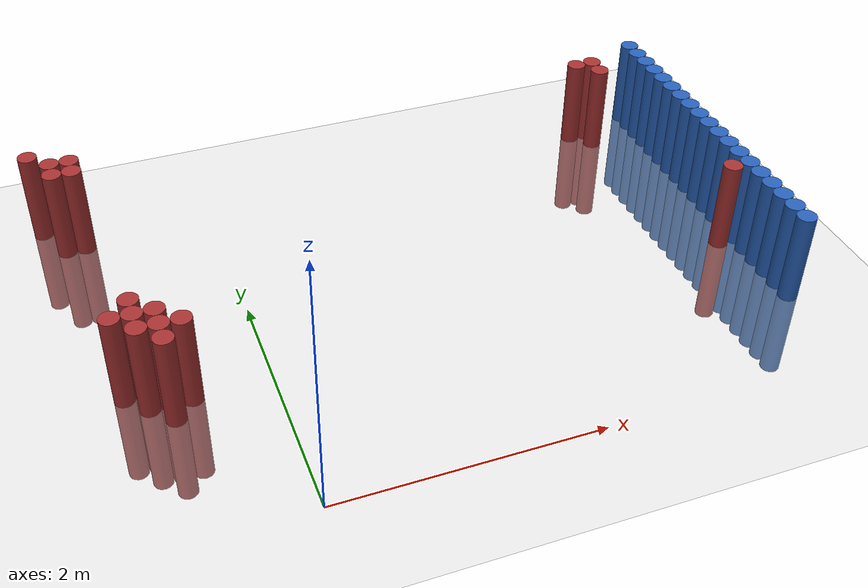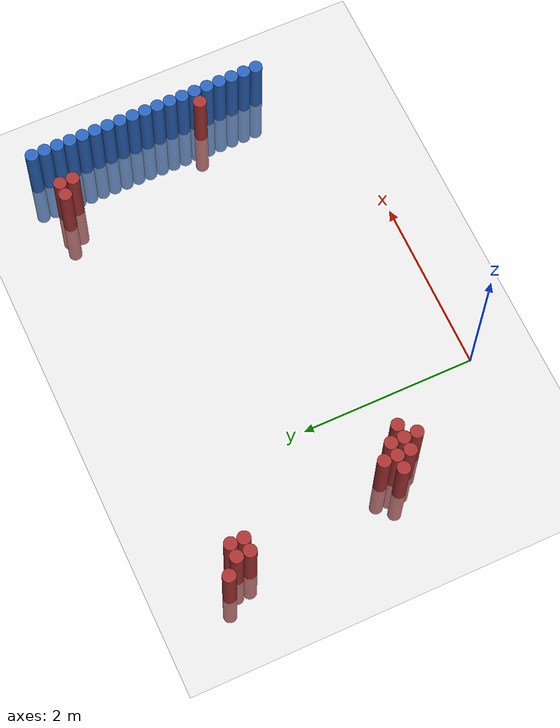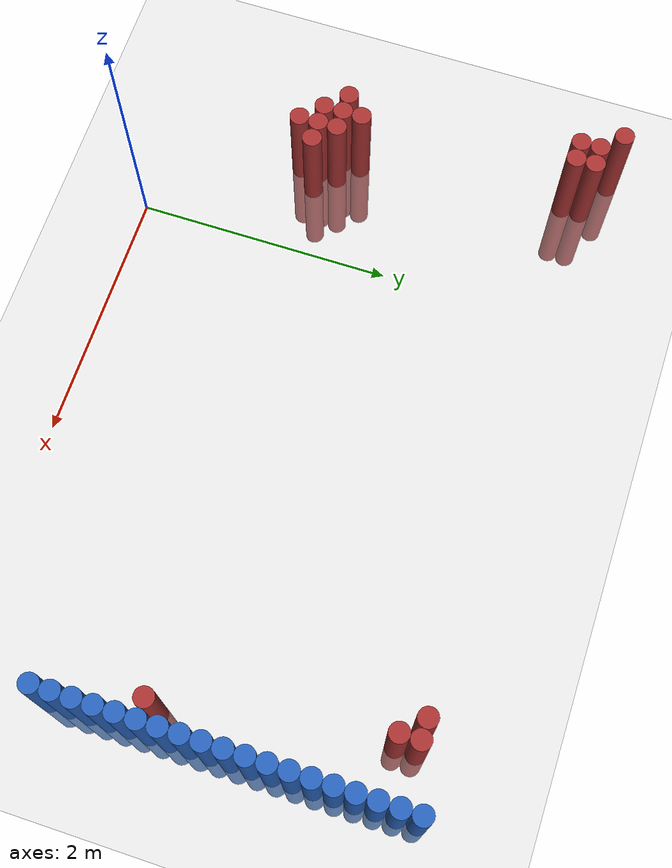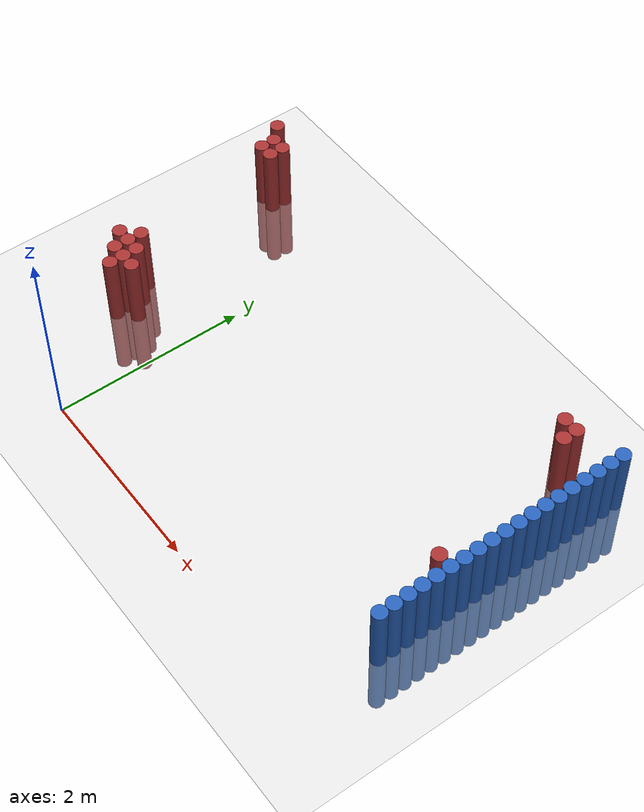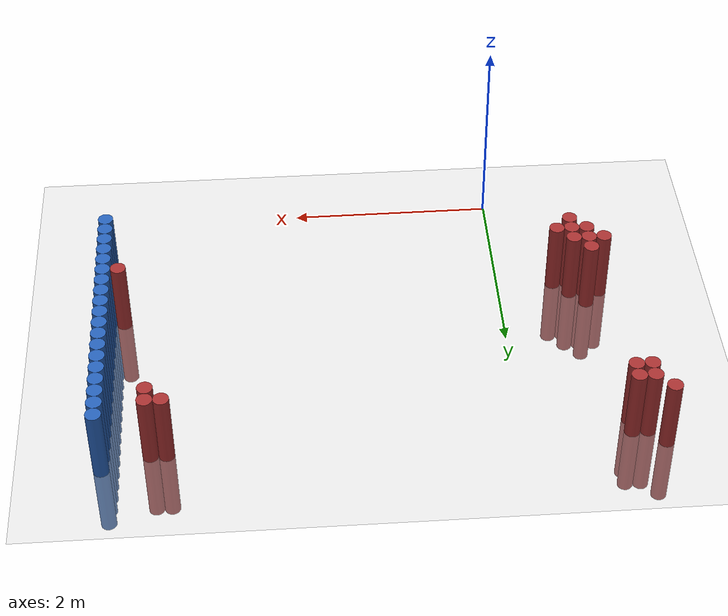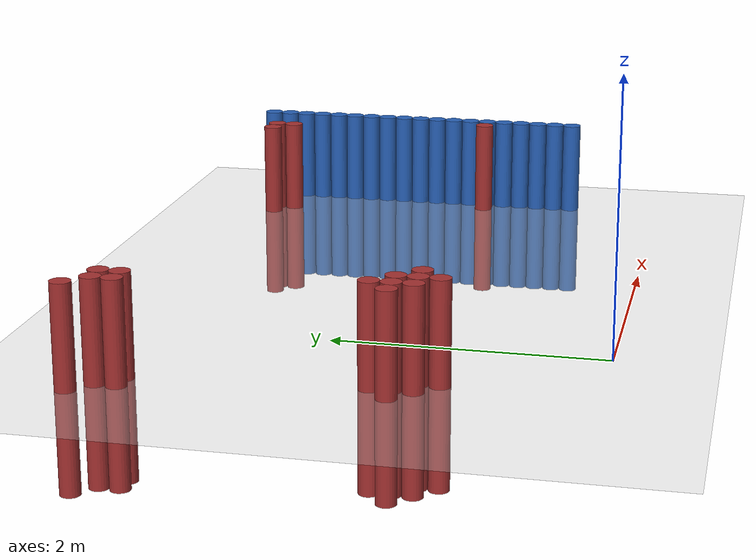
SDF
<sdf version="1.6">
 <world name="default">
  <model name="ground_plane">
   <static>1</static>
   <link name="link">
    <collision name="collision">
     <geometry><plane><normal>0 0 1</normal><size>100 100</size></plane></geometry>
     <surface><friction><ode><mu>100</mu><mu2>50</mu2></ode></friction></surface>
    </collision>
    <visual name="visual">
     <cast_shadows>0</cast_shadows>
     <geometry><plane><normal>0 0 1</normal><size>100 100</size></plane></geometry>
     <material>
      <script><uri>file://media/materials/scripts/gazebo.material</uri><name>Gazebo/Grey</name></script>
     </material>
    </visual>
   </link>
  </model>
  <model name="unit_cylinder_126">
   <static>1</static>
   <pose>3.925000 0.925000 0.000000 0.000000 0.000000 0.000000</pose>
   <link name="link">
    <inertial>
     <mass>1</mass>
     <inertia><ixx>0.145833</ixx><ixy>0</ixy><ixz>0</ixz><iyy>0.145833</iyy><iyz>0</iyz><izz>0.125</izz></inertia>
    </inertial>
    <collision name="collision">
     <geometry><cylinder><radius>0.075000</radius><length>1.5</length></cylinder></geometry>
    </collision>
    <visual name="visual">
     <geometry><cylinder><radius>0.075000</radius><length>1.5</length></cylinder></geometry>
     <material>
      <ambient>0.152000 0.379000 0.720000 1</ambient>
      <diffuse>0.152000 0.379000 0.720000 1</diffuse>
     </material>
     <material>
      <script><name>Gazebo/Grey</name><uri>file://media/materials/scripts/gazebo.material</uri></script>
     </material>
    </visual>
   </link>
  </model>
  <model name="unit_cylinder_128">
   <static>1</static>
   <pose>3.925000 1.075000 0.000000 0.000000 0.000000 0.000000</pose>
   <link name="link">
    <inertial>
     <mass>1</mass>
     <inertia><ixx>0.145833</ixx><ixy>0</ixy><ixz>0</ixz><iyy>0.145833</iyy><iyz>0</iyz><izz>0.125</izz></inertia>
    </inertial>
    <collision name="collision">
     <geometry><cylinder><radius>0.075000</radius><length>1.5</length></cylinder></geometry>
    </collision>
    <visual name="visual">
     <geometry><cylinder><radius>0.075000</radius><length>1.5</length></cylinder></geometry>
     <material>
      <ambient>0.152000 0.379000 0.720000 1</ambient>
      <diffuse>0.152000 0.379000 0.720000 1</diffuse>
     </material>
     <material>
      <script><name>Gazebo/Grey</name><uri>file://media/materials/scripts/gazebo.material</uri></script>
     </material>
    </visual>
   </link>
  </model>
  <model name="unit_cylinder_130">
   <static>1</static>
   <pose>3.925000 1.225000 0.000000 0.000000 0.000000 0.000000</pose>
   <link name="link">
    <inertial>
     <mass>1</mass>
     <inertia><ixx>0.145833</ixx><ixy>0</ixy><ixz>0</ixz><iyy>0.145833</iyy><iyz>0</iyz><izz>0.125</izz></inertia>
    </inertial>
    <collision name="collision">
     <geometry><cylinder><radius>0.075000</radius><length>1.5</length></cylinder></geometry>
    </collision>
    <visual name="visual">
     <geometry><cylinder><radius>0.075000</radius><length>1.5</length></cylinder></geometry>
     <material>
      <ambient>0.152000 0.379000 0.720000 1</ambient>
      <diffuse>0.152000 0.379000 0.720000 1</diffuse>
     </material>
     <material>
      <script><name>Gazebo/Grey</name><uri>file://media/materials/scripts/gazebo.material</uri></script>
     </material>
    </visual>
   </link>
  </model>
  <model name="unit_cylinder_132">
   <static>1</static>
   <pose>3.925000 1.375000 0.000000 0.000000 0.000000 0.000000</pose>
   <link name="link">
    <inertial>
     <mass>1</mass>
     <inertia><ixx>0.145833</ixx><ixy>0</ixy><ixz>0</ixz><iyy>0.145833</iyy><iyz>0</iyz><izz>0.125</izz></inertia>
    </inertial>
    <collision name="collision">
     <geometry><cylinder><radius>0.075000</radius><length>1.5</length></cylinder></geometry>
    </collision>
    <visual name="visual">
     <geometry><cylinder><radius>0.075000</radius><length>1.5</length></cylinder></geometry>
     <material>
      <ambient>0.152000 0.379000 0.720000 1</ambient>
      <diffuse>0.152000 0.379000 0.720000 1</diffuse>
     </material>
     <material>
      <script><name>Gazebo/Grey</name><uri>file://media/materials/scripts/gazebo.material</uri></script>
     </material>
    </visual>
   </link>
  </model>
  <model name="unit_cylinder_134">
   <static>1</static>
   <pose>3.925000 1.525000 0.000000 0.000000 0.000000 0.000000</pose>
   <link name="link">
    <inertial>
     <mass>1</mass>
     <inertia><ixx>0.145833</ixx><ixy>0</ixy><ixz>0</ixz><iyy>0.145833</iyy><iyz>0</iyz><izz>0.125</izz></inertia>
    </inertial>
    <collision name="collision">
     <geometry><cylinder><radius>0.075000</radius><length>1.5</length></cylinder></geometry>
    </collision>
    <visual name="visual">
     <geometry><cylinder><radius>0.075000</radius><length>1.5</length></cylinder></geometry>
     <material>
      <ambient>0.152000 0.379000 0.720000 1</ambient>
      <diffuse>0.152000 0.379000 0.720000 1</diffuse>
     </material>
     <material>
      <script><name>Gazebo/Grey</name><uri>file://media/materials/scripts/gazebo.material</uri></script>
     </material>
    </visual>
   </link>
  </model>
  <model name="unit_cylinder_136">
   <static>1</static>
   <pose>3.925000 1.675000 0.000000 0.000000 0.000000 0.000000</pose>
   <link name="link">
    <inertial>
     <mass>1</mass>
     <inertia><ixx>0.145833</ixx><ixy>0</ixy><ixz>0</ixz><iyy>0.145833</iyy><iyz>0</iyz><izz>0.125</izz></inertia>
    </inertial>
    <collision name="collision">
     <geometry><cylinder><radius>0.075000</radius><length>1.5</length></cylinder></geometry>
    </collision>
    <visual name="visual">
     <geometry><cylinder><radius>0.075000</radius><length>1.5</length></cylinder></geometry>
     <material>
      <ambient>0.152000 0.379000 0.720000 1</ambient>
      <diffuse>0.152000 0.379000 0.720000 1</diffuse>
     </material>
     <material>
      <script><name>Gazebo/Grey</name><uri>file://media/materials/scripts/gazebo.material</uri></script>
     </material>
    </visual>
   </link>
  </model>
  <model name="unit_cylinder_138">
   <static>1</static>
   <pose>3.925000 1.825000 0.000000 0.000000 0.000000 0.000000</pose>
   <link name="link">
    <inertial>
     <mass>1</mass>
     <inertia><ixx>0.145833</ixx><ixy>0</ixy><ixz>0</ixz><iyy>0.145833</iyy><iyz>0</iyz><izz>0.125</izz></inertia>
    </inertial>
    <collision name="collision">
     <geometry><cylinder><radius>0.075000</radius><length>1.5</length></cylinder></geometry>
    </collision>
    <visual name="visual">
     <geometry><cylinder><radius>0.075000</radius><length>1.5</length></cylinder></geometry>
     <material>
      <ambient>0.152000 0.379000 0.720000 1</ambient>
      <diffuse>0.152000 0.379000 0.720000 1</diffuse>
     </material>
     <material>
      <script><name>Gazebo/Grey</name><uri>file://media/materials/scripts/gazebo.material</uri></script>
     </material>
    </visual>
   </link>
  </model>
  <model name="unit_cylinder_140">
   <static>1</static>
   <pose>3.925000 1.975000 0.000000 0.000000 0.000000 0.000000</pose>
   <link name="link">
    <inertial>
     <mass>1</mass>
     <inertia><ixx>0.145833</ixx><ixy>0</ixy><ixz>0</ixz><iyy>0.145833</iyy><iyz>0</iyz><izz>0.125</izz></inertia>
    </inertial>
    <collision name="collision">
     <geometry><cylinder><radius>0.075000</radius><length>1.5</length></cylinder></geometry>
    </collision>
    <visual name="visual">
     <geometry><cylinder><radius>0.075000</radius><length>1.5</length></cylinder></geometry>
     <material>
      <ambient>0.152000 0.379000 0.720000 1</ambient>
      <diffuse>0.152000 0.379000 0.720000 1</diffuse>
     </material>
     <material>
      <script><name>Gazebo/Grey</name><uri>file://media/materials/scripts/gazebo.material</uri></script>
     </material>
    </visual>
   </link>
  </model>
  <model name="unit_cylinder_142">
   <static>1</static>
   <pose>3.925000 2.125000 0.000000 0.000000 0.000000 0.000000</pose>
   <link name="link">
    <inertial>
     <mass>1</mass>
     <inertia><ixx>0.145833</ixx><ixy>0</ixy><ixz>0</ixz><iyy>0.145833</iyy><iyz>0</iyz><izz>0.125</izz></inertia>
    </inertial>
    <collision name="collision">
     <geometry><cylinder><radius>0.075000</radius><length>1.5</length></cylinder></geometry>
    </collision>
    <visual name="visual">
     <geometry><cylinder><radius>0.075000</radius><length>1.5</length></cylinder></geometry>
     <material>
      <ambient>0.152000 0.379000 0.720000 1</ambient>
      <diffuse>0.152000 0.379000 0.720000 1</diffuse>
     </material>
     <material>
      <script><name>Gazebo/Grey</name><uri>file://media/materials/scripts/gazebo.material</uri></script>
     </material>
    </visual>
   </link>
  </model>
  <model name="unit_cylinder_144">
   <static>1</static>
   <pose>3.925000 2.275000 0.000000 0.000000 0.000000 0.000000</pose>
   <link name="link">
    <inertial>
     <mass>1</mass>
     <inertia><ixx>0.145833</ixx><ixy>0</ixy><ixz>0</ixz><iyy>0.145833</iyy><iyz>0</iyz><izz>0.125</izz></inertia>
    </inertial>
    <collision name="collision">
     <geometry><cylinder><radius>0.075000</radius><length>1.5</length></cylinder></geometry>
    </collision>
    <visual name="visual">
     <geometry><cylinder><radius>0.075000</radius><length>1.5</length></cylinder></geometry>
     <material>
      <ambient>0.152000 0.379000 0.720000 1</ambient>
      <diffuse>0.152000 0.379000 0.720000 1</diffuse>
     </material>
     <material>
      <script><name>Gazebo/Grey</name><uri>file://media/materials/scripts/gazebo.material</uri></script>
     </material>
    </visual>
   </link>
  </model>
  <model name="unit_cylinder_146">
   <static>1</static>
   <pose>3.925000 2.425000 0.000000 0.000000 0.000000 0.000000</pose>
   <link name="link">
    <inertial>
     <mass>1</mass>
     <inertia><ixx>0.145833</ixx><ixy>0</ixy><ixz>0</ixz><iyy>0.145833</iyy><iyz>0</iyz><izz>0.125</izz></inertia>
    </inertial>
    <collision name="collision">
     <geometry><cylinder><radius>0.075000</radius><length>1.5</length></cylinder></geometry>
    </collision>
    <visual name="visual">
     <geometry><cylinder><radius>0.075000</radius><length>1.5</length></cylinder></geometry>
     <material>
      <ambient>0.152000 0.379000 0.720000 1</ambient>
      <diffuse>0.152000 0.379000 0.720000 1</diffuse>
     </material>
     <material>
      <script><name>Gazebo/Grey</name><uri>file://media/materials/scripts/gazebo.material</uri></script>
     </material>
    </visual>
   </link>
  </model>
  <model name="unit_cylinder_148">
   <static>1</static>
   <pose>3.925000 2.575000 0.000000 0.000000 0.000000 0.000000</pose>
   <link name="link">
    <inertial>
     <mass>1</mass>
     <inertia><ixx>0.145833</ixx><ixy>0</ixy><ixz>0</ixz><iyy>0.145833</iyy><iyz>0</iyz><izz>0.125</izz></inertia>
    </inertial>
    <collision name="collision">
     <geometry><cylinder><radius>0.075000</radius><length>1.5</length></cylinder></geometry>
    </collision>
    <visual name="visual">
     <geometry><cylinder><radius>0.075000</radius><length>1.5</length></cylinder></geometry>
     <material>
      <ambient>0.152000 0.379000 0.720000 1</ambient>
      <diffuse>0.152000 0.379000 0.720000 1</diffuse>
     </material>
     <material>
      <script><name>Gazebo/Grey</name><uri>file://media/materials/scripts/gazebo.material</uri></script>
     </material>
    </visual>
   </link>
  </model>
  <model name="unit_cylinder_150">
   <static>1</static>
   <pose>3.925000 2.725000 0.000000 0.000000 0.000000 0.000000</pose>
   <link name="link">
    <inertial>
     <mass>1</mass>
     <inertia><ixx>0.145833</ixx><ixy>0</ixy><ixz>0</ixz><iyy>0.145833</iyy><iyz>0</iyz><izz>0.125</izz></inertia>
    </inertial>
    <collision name="collision">
     <geometry><cylinder><radius>0.075000</radius><length>1.5</length></cylinder></geometry>
    </collision>
    <visual name="visual">
     <geometry><cylinder><radius>0.075000</radius><length>1.5</length></cylinder></geometry>
     <material>
      <ambient>0.152000 0.379000 0.720000 1</ambient>
      <diffuse>0.152000 0.379000 0.720000 1</diffuse>
     </material>
     <material>
      <script><name>Gazebo/Grey</name><uri>file://media/materials/scripts/gazebo.material</uri></script>
     </material>
    </visual>
   </link>
  </model>
  <model name="unit_cylinder_152">
   <static>1</static>
   <pose>3.925000 2.875000 0.000000 0.000000 0.000000 0.000000</pose>
   <link name="link">
    <inertial>
     <mass>1</mass>
     <inertia><ixx>0.145833</ixx><ixy>0</ixy><ixz>0</ixz><iyy>0.145833</iyy><iyz>0</iyz><izz>0.125</izz></inertia>
    </inertial>
    <collision name="collision">
     <geometry><cylinder><radius>0.075000</radius><length>1.5</length></cylinder></geometry>
    </collision>
    <visual name="visual">
     <geometry><cylinder><radius>0.075000</radius><length>1.5</length></cylinder></geometry>
     <material>
      <ambient>0.152000 0.379000 0.720000 1</ambient>
      <diffuse>0.152000 0.379000 0.720000 1</diffuse>
     </material>
     <material>
      <script><name>Gazebo/Grey</name><uri>file://media/materials/scripts/gazebo.material</uri></script>
     </material>
    </visual>
   </link>
  </model>
  <model name="unit_cylinder_154">
   <static>1</static>
   <pose>3.925000 3.025000 0.000000 0.000000 0.000000 0.000000</pose>
   <link name="link">
    <inertial>
     <mass>1</mass>
     <inertia><ixx>0.145833</ixx><ixy>0</ixy><ixz>0</ixz><iyy>0.145833</iyy><iyz>0</iyz><izz>0.125</izz></inertia>
    </inertial>
    <collision name="collision">
     <geometry><cylinder><radius>0.075000</radius><length>1.5</length></cylinder></geometry>
    </collision>
    <visual name="visual">
     <geometry><cylinder><radius>0.075000</radius><length>1.5</length></cylinder></geometry>
     <material>
      <ambient>0.152000 0.379000 0.720000 1</ambient>
      <diffuse>0.152000 0.379000 0.720000 1</diffuse>
     </material>
     <material>
      <script><name>Gazebo/Grey</name><uri>file://media/materials/scripts/gazebo.material</uri></script>
     </material>
    </visual>
   </link>
  </model>
  <model name="unit_cylinder_156">
   <static>1</static>
   <pose>3.925000 3.175000 0.000000 0.000000 0.000000 0.000000</pose>
   <link name="link">
    <inertial>
     <mass>1</mass>
     <inertia><ixx>0.145833</ixx><ixy>0</ixy><ixz>0</ixz><iyy>0.145833</iyy><iyz>0</iyz><izz>0.125</izz></inertia>
    </inertial>
    <collision name="collision">
     <geometry><cylinder><radius>0.075000</radius><length>1.5</length></cylinder></geometry>
    </collision>
    <visual name="visual">
     <geometry><cylinder><radius>0.075000</radius><length>1.5</length></cylinder></geometry>
     <material>
      <ambient>0.152000 0.379000 0.720000 1</ambient>
      <diffuse>0.152000 0.379000 0.720000 1</diffuse>
     </material>
     <material>
      <script><name>Gazebo/Grey</name><uri>file://media/materials/scripts/gazebo.material</uri></script>
     </material>
    </visual>
   </link>
  </model>
  <model name="unit_cylinder_158">
   <static>1</static>
   <pose>3.925000 3.325000 0.000000 0.000000 0.000000 0.000000</pose>
   <link name="link">
    <inertial>
     <mass>1</mass>
     <inertia><ixx>0.145833</ixx><ixy>0</ixy><ixz>0</ixz><iyy>0.145833</iyy><iyz>0</iyz><izz>0.125</izz></inertia>
    </inertial>
    <collision name="collision">
     <geometry><cylinder><radius>0.075000</radius><length>1.5</length></cylinder></geometry>
    </collision>
    <visual name="visual">
     <geometry><cylinder><radius>0.075000</radius><length>1.5</length></cylinder></geometry>
     <material>
      <ambient>0.152000 0.379000 0.720000 1</ambient>
      <diffuse>0.152000 0.379000 0.720000 1</diffuse>
     </material>
     <material>
      <script><name>Gazebo/Grey</name><uri>file://media/materials/scripts/gazebo.material</uri></script>
     </material>
    </visual>
   </link>
  </model>
  <model name="unit_cylinder_160">
   <static>1</static>
   <pose>3.925000 3.475000 0.000000 0.000000 0.000000 0.000000</pose>
   <link name="link">
    <inertial>
     <mass>1</mass>
     <inertia><ixx>0.145833</ixx><ixy>0</ixy><ixz>0</ixz><iyy>0.145833</iyy><iyz>0</iyz><izz>0.125</izz></inertia>
    </inertial>
    <collision name="collision">
     <geometry><cylinder><radius>0.075000</radius><length>1.5</length></cylinder></geometry>
    </collision>
    <visual name="visual">
     <geometry><cylinder><radius>0.075000</radius><length>1.5</length></cylinder></geometry>
     <material>
      <ambient>0.152000 0.379000 0.720000 1</ambient>
      <diffuse>0.152000 0.379000 0.720000 1</diffuse>
     </material>
     <material>
      <script><name>Gazebo/Grey</name><uri>file://media/materials/scripts/gazebo.material</uri></script>
     </material>
    </visual>
   </link>
  </model>
  <model name="unit_cylinder_308">
   <static>1</static>
   <pose>-1.325000 3.475000 0.000000 0.000000 0.000000 0.000000</pose>
   <link name="link">
    <inertial>
     <mass>1</mass>
     <inertia><ixx>0.145833</ixx><ixy>0</ixy><ixz>0</ixz><iyy>0.145833</iyy><iyz>0</iyz><izz>0.125</izz></inertia>
    </inertial>
    <collision name="collision">
     <geometry><cylinder><radius>0.075000</radius><length>1.5</length></cylinder></geometry>
    </collision>
    <visual name="visual">
     <geometry><cylinder><radius>0.075000</radius><length>1.5</length></cylinder></geometry>
     <material>
      <ambient>0.648000 0.192000 0.192000 1</ambient>
      <diffuse>0.648000 0.192000 0.192000 1</diffuse>
     </material>
     <material>
      <script><name>Gazebo/Grey</name><uri>file://media/materials/scripts/gazebo.material</uri></script>
     </material>
    </visual>
   </link>
  </model>
  <model name="unit_cylinder_309">
   <static>1</static>
   <pose>-1.175000 3.175000 0.000000 0.000000 0.000000 0.000000</pose>
   <link name="link">
    <inertial>
     <mass>1</mass>
     <inertia><ixx>0.145833</ixx><ixy>0</ixy><ixz>0</ixz><iyy>0.145833</iyy><iyz>0</iyz><izz>0.125</izz></inertia>
    </inertial>
    <collision name="collision">
     <geometry><cylinder><radius>0.075000</radius><length>1.5</length></cylinder></geometry>
    </collision>
    <visual name="visual">
     <geometry><cylinder><radius>0.075000</radius><length>1.5</length></cylinder></geometry>
     <material>
      <ambient>0.648000 0.192000 0.192000 1</ambient>
      <diffuse>0.648000 0.192000 0.192000 1</diffuse>
     </material>
     <material>
      <script><name>Gazebo/Grey</name><uri>file://media/materials/scripts/gazebo.material</uri></script>
     </material>
    </visual>
   </link>
  </model>
  <model name="unit_cylinder_310">
   <static>1</static>
   <pose>-1.175000 3.325000 0.000000 0.000000 0.000000 0.000000</pose>
   <link name="link">
    <inertial>
     <mass>1</mass>
     <inertia><ixx>0.145833</ixx><ixy>0</ixy><ixz>0</ixz><iyy>0.145833</iyy><iyz>0</iyz><izz>0.125</izz></inertia>
    </inertial>
    <collision name="collision">
     <geometry><cylinder><radius>0.075000</radius><length>1.5</length></cylinder></geometry>
    </collision>
    <visual name="visual">
     <geometry><cylinder><radius>0.075000</radius><length>1.5</length></cylinder></geometry>
     <material>
      <ambient>0.648000 0.192000 0.192000 1</ambient>
      <diffuse>0.648000 0.192000 0.192000 1</diffuse>
     </material>
     <material>
      <script><name>Gazebo/Grey</name><uri>file://media/materials/scripts/gazebo.material</uri></script>
     </material>
    </visual>
   </link>
  </model>
  <model name="unit_cylinder_311">
   <static>1</static>
   <pose>-1.025000 1.375000 0.000000 0.000000 0.000000 0.000000</pose>
   <link name="link">
    <inertial>
     <mass>1</mass>
     <inertia><ixx>0.145833</ixx><ixy>0</ixy><ixz>0</ixz><iyy>0.145833</iyy><iyz>0</iyz><izz>0.125</izz></inertia>
    </inertial>
    <collision name="collision">
     <geometry><cylinder><radius>0.075000</radius><length>1.5</length></cylinder></geometry>
    </collision>
    <visual name="visual">
     <geometry><cylinder><radius>0.075000</radius><length>1.5</length></cylinder></geometry>
     <material>
      <ambient>0.648000 0.192000 0.192000 1</ambient>
      <diffuse>0.648000 0.192000 0.192000 1</diffuse>
     </material>
     <material>
      <script><name>Gazebo/Grey</name><uri>file://media/materials/scripts/gazebo.material</uri></script>
     </material>
    </visual>
   </link>
  </model>
  <model name="unit_cylinder_312">
   <static>1</static>
   <pose>-1.025000 3.175000 0.000000 0.000000 0.000000 0.000000</pose>
   <link name="link">
    <inertial>
     <mass>1</mass>
     <inertia><ixx>0.145833</ixx><ixy>0</ixy><ixz>0</ixz><iyy>0.145833</iyy><iyz>0</iyz><izz>0.125</izz></inertia>
    </inertial>
    <collision name="collision">
     <geometry><cylinder><radius>0.075000</radius><length>1.5</length></cylinder></geometry>
    </collision>
    <visual name="visual">
     <geometry><cylinder><radius>0.075000</radius><length>1.5</length></cylinder></geometry>
     <material>
      <ambient>0.648000 0.192000 0.192000 1</ambient>
      <diffuse>0.648000 0.192000 0.192000 1</diffuse>
     </material>
     <material>
      <script><name>Gazebo/Grey</name><uri>file://media/materials/scripts/gazebo.material</uri></script>
     </material>
    </visual>
   </link>
  </model>
  <model name="unit_cylinder_313">
   <static>1</static>
   <pose>-1.025000 3.325000 0.000000 0.000000 0.000000 0.000000</pose>
   <link name="link">
    <inertial>
     <mass>1</mass>
     <inertia><ixx>0.145833</ixx><ixy>0</ixy><ixz>0</ixz><iyy>0.145833</iyy><iyz>0</iyz><izz>0.125</izz></inertia>
    </inertial>
    <collision name="collision">
     <geometry><cylinder><radius>0.075000</radius><length>1.5</length></cylinder></geometry>
    </collision>
    <visual name="visual">
     <geometry><cylinder><radius>0.075000</radius><length>1.5</length></cylinder></geometry>
     <material>
      <ambient>0.648000 0.192000 0.192000 1</ambient>
      <diffuse>0.648000 0.192000 0.192000 1</diffuse>
     </material>
     <material>
      <script><name>Gazebo/Grey</name><uri>file://media/materials/scripts/gazebo.material</uri></script>
     </material>
    </visual>
   </link>
  </model>
  <model name="unit_cylinder_314">
   <static>1</static>
   <pose>-0.875000 1.225000 0.000000 0.000000 0.000000 0.000000</pose>
   <link name="link">
    <inertial>
     <mass>1</mass>
     <inertia><ixx>0.145833</ixx><ixy>0</ixy><ixz>0</ixz><iyy>0.145833</iyy><iyz>0</iyz><izz>0.125</izz></inertia>
    </inertial>
    <collision name="collision">
     <geometry><cylinder><radius>0.075000</radius><length>1.5</length></cylinder></geometry>
    </collision>
    <visual name="visual">
     <geometry><cylinder><radius>0.075000</radius><length>1.5</length></cylinder></geometry>
     <material>
      <ambient>0.648000 0.192000 0.192000 1</ambient>
      <diffuse>0.648000 0.192000 0.192000 1</diffuse>
     </material>
     <material>
      <script><name>Gazebo/Grey</name><uri>file://media/materials/scripts/gazebo.material</uri></script>
     </material>
    </visual>
   </link>
  </model>
  <model name="unit_cylinder_315">
   <static>1</static>
   <pose>-0.875000 1.375000 0.000000 0.000000 0.000000 0.000000</pose>
   <link name="link">
    <inertial>
     <mass>1</mass>
     <inertia><ixx>0.145833</ixx><ixy>0</ixy><ixz>0</ixz><iyy>0.145833</iyy><iyz>0</iyz><izz>0.125</izz></inertia>
    </inertial>
    <collision name="collision">
     <geometry><cylinder><radius>0.075000</radius><length>1.5</length></cylinder></geometry>
    </collision>
    <visual name="visual">
     <geometry><cylinder><radius>0.075000</radius><length>1.5</length></cylinder></geometry>
     <material>
      <ambient>0.648000 0.192000 0.192000 1</ambient>
      <diffuse>0.648000 0.192000 0.192000 1</diffuse>
     </material>
     <material>
      <script><name>Gazebo/Grey</name><uri>file://media/materials/scripts/gazebo.material</uri></script>
     </material>
    </visual>
   </link>
  </model>
  <model name="unit_cylinder_316">
   <static>1</static>
   <pose>-0.875000 1.525000 0.000000 0.000000 0.000000 0.000000</pose>
   <link name="link">
    <inertial>
     <mass>1</mass>
     <inertia><ixx>0.145833</ixx><ixy>0</ixy><ixz>0</ixz><iyy>0.145833</iyy><iyz>0</iyz><izz>0.125</izz></inertia>
    </inertial>
    <collision name="collision">
     <geometry><cylinder><radius>0.075000</radius><length>1.5</length></cylinder></geometry>
    </collision>
    <visual name="visual">
     <geometry><cylinder><radius>0.075000</radius><length>1.5</length></cylinder></geometry>
     <material>
      <ambient>0.648000 0.192000 0.192000 1</ambient>
      <diffuse>0.648000 0.192000 0.192000 1</diffuse>
     </material>
     <material>
      <script><name>Gazebo/Grey</name><uri>file://media/materials/scripts/gazebo.material</uri></script>
     </material>
    </visual>
   </link>
  </model>
  <model name="unit_cylinder_317">
   <static>1</static>
   <pose>-0.725000 1.075000 0.000000 0.000000 0.000000 0.000000</pose>
   <link name="link">
    <inertial>
     <mass>1</mass>
     <inertia><ixx>0.145833</ixx><ixy>0</ixy><ixz>0</ixz><iyy>0.145833</iyy><iyz>0</iyz><izz>0.125</izz></inertia>
    </inertial>
    <collision name="collision">
     <geometry><cylinder><radius>0.075000</radius><length>1.5</length></cylinder></geometry>
    </collision>
    <visual name="visual">
     <geometry><cylinder><radius>0.075000</radius><length>1.5</length></cylinder></geometry>
     <material>
      <ambient>0.648000 0.192000 0.192000 1</ambient>
      <diffuse>0.648000 0.192000 0.192000 1</diffuse>
     </material>
     <material>
      <script><name>Gazebo/Grey</name><uri>file://media/materials/scripts/gazebo.material</uri></script>
     </material>
    </visual>
   </link>
  </model>
  <model name="unit_cylinder_318">
   <static>1</static>
   <pose>-0.725000 1.225000 0.000000 0.000000 0.000000 0.000000</pose>
   <link name="link">
    <inertial>
     <mass>1</mass>
     <inertia><ixx>0.145833</ixx><ixy>0</ixy><ixz>0</ixz><iyy>0.145833</iyy><iyz>0</iyz><izz>0.125</izz></inertia>
    </inertial>
    <collision name="collision">
     <geometry><cylinder><radius>0.075000</radius><length>1.5</length></cylinder></geometry>
    </collision>
    <visual name="visual">
     <geometry><cylinder><radius>0.075000</radius><length>1.5</length></cylinder></geometry>
     <material>
      <ambient>0.648000 0.192000 0.192000 1</ambient>
      <diffuse>0.648000 0.192000 0.192000 1</diffuse>
     </material>
     <material>
      <script><name>Gazebo/Grey</name><uri>file://media/materials/scripts/gazebo.material</uri></script>
     </material>
    </visual>
   </link>
  </model>
  <model name="unit_cylinder_319">
   <static>1</static>
   <pose>-0.725000 1.375000 0.000000 0.000000 0.000000 0.000000</pose>
   <link name="link">
    <inertial>
     <mass>1</mass>
     <inertia><ixx>0.145833</ixx><ixy>0</ixy><ixz>0</ixz><iyy>0.145833</iyy><iyz>0</iyz><izz>0.125</izz></inertia>
    </inertial>
    <collision name="collision">
     <geometry><cylinder><radius>0.075000</radius><length>1.5</length></cylinder></geometry>
    </collision>
    <visual name="visual">
     <geometry><cylinder><radius>0.075000</radius><length>1.5</length></cylinder></geometry>
     <material>
      <ambient>0.648000 0.192000 0.192000 1</ambient>
      <diffuse>0.648000 0.192000 0.192000 1</diffuse>
     </material>
     <material>
      <script><name>Gazebo/Grey</name><uri>file://media/materials/scripts/gazebo.material</uri></script>
     </material>
    </visual>
   </link>
  </model>
  <model name="unit_cylinder_320">
   <static>1</static>
   <pose>-0.575000 1.225000 0.000000 0.000000 0.000000 0.000000</pose>
   <link name="link">
    <inertial>
     <mass>1</mass>
     <inertia><ixx>0.145833</ixx><ixy>0</ixy><ixz>0</ixz><iyy>0.145833</iyy><iyz>0</iyz><izz>0.125</izz></inertia>
    </inertial>
    <collision name="collision">
     <geometry><cylinder><radius>0.075000</radius><length>1.5</length></cylinder></geometry>
    </collision>
    <visual name="visual">
     <geometry><cylinder><radius>0.075000</radius><length>1.5</length></cylinder></geometry>
     <material>
      <ambient>0.648000 0.192000 0.192000 1</ambient>
      <diffuse>0.648000 0.192000 0.192000 1</diffuse>
     </material>
     <material>
      <script><name>Gazebo/Grey</name><uri>file://media/materials/scripts/gazebo.material</uri></script>
     </material>
    </visual>
   </link>
  </model>
  <model name="unit_cylinder_348">
   <static>1</static>
   <pose>3.325000 3.325000 0.000000 0.000000 0.000000 0.000000</pose>
   <link name="link">
    <inertial>
     <mass>1</mass>
     <inertia><ixx>0.145833</ixx><ixy>0</ixy><ixz>0</ixz><iyy>0.145833</iyy><iyz>0</iyz><izz>0.125</izz></inertia>
    </inertial>
    <collision name="collision">
     <geometry><cylinder><radius>0.075000</radius><length>1.5</length></cylinder></geometry>
    </collision>
    <visual name="visual">
     <geometry><cylinder><radius>0.075000</radius><length>1.5</length></cylinder></geometry>
     <material>
      <ambient>0.648000 0.192000 0.192000 1</ambient>
      <diffuse>0.648000 0.192000 0.192000 1</diffuse>
     </material>
     <material>
      <script><name>Gazebo/Grey</name><uri>file://media/materials/scripts/gazebo.material</uri></script>
     </material>
    </visual>
   </link>
  </model>
  <model name="unit_cylinder_353">
   <static>1</static>
   <pose>3.475000 3.175000 0.000000 0.000000 0.000000 0.000000</pose>
   <link name="link">
    <inertial>
     <mass>1</mass>
     <inertia><ixx>0.145833</ixx><ixy>0</ixy><ixz>0</ixz><iyy>0.145833</iyy><iyz>0</iyz><izz>0.125</izz></inertia>
    </inertial>
    <collision name="collision">
     <geometry><cylinder><radius>0.075000</radius><length>1.5</length></cylinder></geometry>
    </collision>
    <visual name="visual">
     <geometry><cylinder><radius>0.075000</radius><length>1.5</length></cylinder></geometry>
     <material>
      <ambient>0.648000 0.192000 0.192000 1</ambient>
      <diffuse>0.648000 0.192000 0.192000 1</diffuse>
     </material>
     <material>
      <script><name>Gazebo/Grey</name><uri>file://media/materials/scripts/gazebo.material</uri></script>
     </material>
    </visual>
   </link>
  </model>
  <model name="unit_cylinder_354">
   <static>1</static>
   <pose>3.475000 3.325000 0.000000 0.000000 0.000000 0.000000</pose>
   <link name="link">
    <inertial>
     <mass>1</mass>
     <inertia><ixx>0.145833</ixx><ixy>0</ixy><ixz>0</ixz><iyy>0.145833</iyy><iyz>0</iyz><izz>0.125</izz></inertia>
    </inertial>
    <collision name="collision">
     <geometry><cylinder><radius>0.075000</radius><length>1.5</length></cylinder></geometry>
    </collision>
    <visual name="visual">
     <geometry><cylinder><radius>0.075000</radius><length>1.5</length></cylinder></geometry>
     <material>
      <ambient>0.648000 0.192000 0.192000 1</ambient>
      <diffuse>0.648000 0.192000 0.192000 1</diffuse>
     </material>
     <material>
      <script><name>Gazebo/Grey</name><uri>file://media/materials/scripts/gazebo.material</uri></script>
     </material>
    </visual>
   </link>
  </model>
  <model name="unit_cylinder_365">
   <static>1</static>
   <pose>3.775000 1.525000 0.000000 0.000000 0.000000 0.000000</pose>
   <link name="link">
    <inertial>
     <mass>1</mass>
     <inertia><ixx>0.145833</ixx><ixy>0</ixy><ixz>0</ixz><iyy>0.145833</iyy><iyz>0</iyz><izz>0.125</izz></inertia>
    </inertial>
    <collision name="collision">
     <geometry><cylinder><radius>0.075000</radius><length>1.5</length></cylinder></geometry>
    </collision>
    <visual name="visual">
     <geometry><cylinder><radius>0.075000</radius><length>1.5</length></cylinder></geometry>
     <material>
      <ambient>0.648000 0.192000 0.192000 1</ambient>
      <diffuse>0.648000 0.192000 0.192000 1</diffuse>
     </material>
     <material>
      <script><name>Gazebo/Grey</name><uri>file://media/materials/scripts/gazebo.material</uri></script>
     </material>
    </visual>
   </link>
  </model>
  <model name="unit_cylinder_389">
   <static>1</static>
   <pose>3.925000 0.775000 0.000000 0.000000 0.000000 0.000000</pose>
   <link name="link">
    <inertial>
     <mass>1</mass>
     <inertia><ixx>0.145833</ixx><ixy>0</ixy><ixz>0</ixz><iyy>0.145833</iyy><iyz>0</iyz><izz>0.125</izz></inertia>
    </inertial>
    <collision name="collision">
     <geometry><cylinder><radius>0.075000</radius><length>1.5</length></cylinder></geometry>
    </collision>
    <visual name="visual">
     <geometry><cylinder><radius>0.075000</radius><length>1.5</length></cylinder></geometry>
     <material>
      <ambient>0.152000 0.379000 0.720000 1</ambient>
      <diffuse>0.152000 0.379000 0.720000 1</diffuse>
     </material>
     <material>
      <script><name>Gazebo/Grey</name><uri>file://media/materials/scripts/gazebo.material</uri></script>
     </material>
    </visual>
   </link>
  </model>
  <model name="unit_cylinder_390">
   <static>1</static>
   <pose>3.925000 0.925000 0.000000 0.000000 0.000000 0.000000</pose>
   <link name="link">
    <inertial>
     <mass>1</mass>
     <inertia><ixx>0.145833</ixx><ixy>0</ixy><ixz>0</ixz><iyy>0.145833</iyy><iyz>0</iyz><izz>0.125</izz></inertia>
    </inertial>
    <collision name="collision">
     <geometry><cylinder><radius>0.075000</radius><length>1.5</length></cylinder></geometry>
    </collision>
    <visual name="visual">
     <geometry><cylinder><radius>0.075000</radius><length>1.5</length></cylinder></geometry>
     <material>
      <ambient>0.152000 0.379000 0.720000 1</ambient>
      <diffuse>0.152000 0.379000 0.720000 1</diffuse>
     </material>
     <material>
      <script><name>Gazebo/Grey</name><uri>file://media/materials/scripts/gazebo.material</uri></script>
     </material>
    </visual>
   </link>
  </model>
  <model name="unit_cylinder_391">
   <static>1</static>
   <pose>3.925000 1.075000 0.000000 0.000000 0.000000 0.000000</pose>
   <link name="link">
    <inertial>
     <mass>1</mass>
     <inertia><ixx>0.145833</ixx><ixy>0</ixy><ixz>0</ixz><iyy>0.145833</iyy><iyz>0</iyz><izz>0.125</izz></inertia>
    </inertial>
    <collision name="collision">
     <geometry><cylinder><radius>0.075000</radius><length>1.5</length></cylinder></geometry>
    </collision>
    <visual name="visual">
     <geometry><cylinder><radius>0.075000</radius><length>1.5</length></cylinder></geometry>
     <material>
      <ambient>0.152000 0.379000 0.720000 1</ambient>
      <diffuse>0.152000 0.379000 0.720000 1</diffuse>
     </material>
     <material>
      <script><name>Gazebo/Grey</name><uri>file://media/materials/scripts/gazebo.material</uri></script>
     </material>
    </visual>
   </link>
  </model>
  <model name="unit_cylinder_392">
   <static>1</static>
   <pose>3.925000 1.225000 0.000000 0.000000 0.000000 0.000000</pose>
   <link name="link">
    <inertial>
     <mass>1</mass>
     <inertia><ixx>0.145833</ixx><ixy>0</ixy><ixz>0</ixz><iyy>0.145833</iyy><iyz>0</iyz><izz>0.125</izz></inertia>
    </inertial>
    <collision name="collision">
     <geometry><cylinder><radius>0.075000</radius><length>1.5</length></cylinder></geometry>
    </collision>
    <visual name="visual">
     <geometry><cylinder><radius>0.075000</radius><length>1.5</length></cylinder></geometry>
     <material>
      <ambient>0.152000 0.379000 0.720000 1</ambient>
      <diffuse>0.152000 0.379000 0.720000 1</diffuse>
     </material>
     <material>
      <script><name>Gazebo/Grey</name><uri>file://media/materials/scripts/gazebo.material</uri></script>
     </material>
    </visual>
   </link>
  </model>
  <model name="unit_cylinder_393">
   <static>1</static>
   <pose>3.925000 1.375000 0.000000 0.000000 0.000000 0.000000</pose>
   <link name="link">
    <inertial>
     <mass>1</mass>
     <inertia><ixx>0.145833</ixx><ixy>0</ixy><ixz>0</ixz><iyy>0.145833</iyy><iyz>0</iyz><izz>0.125</izz></inertia>
    </inertial>
    <collision name="collision">
     <geometry><cylinder><radius>0.075000</radius><length>1.5</length></cylinder></geometry>
    </collision>
    <visual name="visual">
     <geometry><cylinder><radius>0.075000</radius><length>1.5</length></cylinder></geometry>
     <material>
      <ambient>0.152000 0.379000 0.720000 1</ambient>
      <diffuse>0.152000 0.379000 0.720000 1</diffuse>
     </material>
     <material>
      <script><name>Gazebo/Grey</name><uri>file://media/materials/scripts/gazebo.material</uri></script>
     </material>
    </visual>
   </link>
  </model>
  <model name="unit_cylinder_394">
   <static>1</static>
   <pose>3.925000 1.525000 0.000000 0.000000 0.000000 0.000000</pose>
   <link name="link">
    <inertial>
     <mass>1</mass>
     <inertia><ixx>0.145833</ixx><ixy>0</ixy><ixz>0</ixz><iyy>0.145833</iyy><iyz>0</iyz><izz>0.125</izz></inertia>
    </inertial>
    <collision name="collision">
     <geometry><cylinder><radius>0.075000</radius><length>1.5</length></cylinder></geometry>
    </collision>
    <visual name="visual">
     <geometry><cylinder><radius>0.075000</radius><length>1.5</length></cylinder></geometry>
     <material>
      <ambient>0.152000 0.379000 0.720000 1</ambient>
      <diffuse>0.152000 0.379000 0.720000 1</diffuse>
     </material>
     <material>
      <script><name>Gazebo/Grey</name><uri>file://media/materials/scripts/gazebo.material</uri></script>
     </material>
    </visual>
   </link>
  </model>
  <model name="unit_cylinder_395">
   <static>1</static>
   <pose>3.925000 1.675000 0.000000 0.000000 0.000000 0.000000</pose>
   <link name="link">
    <inertial>
     <mass>1</mass>
     <inertia><ixx>0.145833</ixx><ixy>0</ixy><ixz>0</ixz><iyy>0.145833</iyy><iyz>0</iyz><izz>0.125</izz></inertia>
    </inertial>
    <collision name="collision">
     <geometry><cylinder><radius>0.075000</radius><length>1.5</length></cylinder></geometry>
    </collision>
    <visual name="visual">
     <geometry><cylinder><radius>0.075000</radius><length>1.5</length></cylinder></geometry>
     <material>
      <ambient>0.152000 0.379000 0.720000 1</ambient>
      <diffuse>0.152000 0.379000 0.720000 1</diffuse>
     </material>
     <material>
      <script><name>Gazebo/Grey</name><uri>file://media/materials/scripts/gazebo.material</uri></script>
     </material>
    </visual>
   </link>
  </model>
  <model name="unit_cylinder_396">
   <static>1</static>
   <pose>3.925000 1.825000 0.000000 0.000000 0.000000 0.000000</pose>
   <link name="link">
    <inertial>
     <mass>1</mass>
     <inertia><ixx>0.145833</ixx><ixy>0</ixy><ixz>0</ixz><iyy>0.145833</iyy><iyz>0</iyz><izz>0.125</izz></inertia>
    </inertial>
    <collision name="collision">
     <geometry><cylinder><radius>0.075000</radius><length>1.5</length></cylinder></geometry>
    </collision>
    <visual name="visual">
     <geometry><cylinder><radius>0.075000</radius><length>1.5</length></cylinder></geometry>
     <material>
      <ambient>0.152000 0.379000 0.720000 1</ambient>
      <diffuse>0.152000 0.379000 0.720000 1</diffuse>
     </material>
     <material>
      <script><name>Gazebo/Grey</name><uri>file://media/materials/scripts/gazebo.material</uri></script>
     </material>
    </visual>
   </link>
  </model>
  <model name="unit_cylinder_397">
   <static>1</static>
   <pose>3.925000 1.975000 0.000000 0.000000 0.000000 0.000000</pose>
   <link name="link">
    <inertial>
     <mass>1</mass>
     <inertia><ixx>0.145833</ixx><ixy>0</ixy><ixz>0</ixz><iyy>0.145833</iyy><iyz>0</iyz><izz>0.125</izz></inertia>
    </inertial>
    <collision name="collision">
     <geometry><cylinder><radius>0.075000</radius><length>1.5</length></cylinder></geometry>
    </collision>
    <visual name="visual">
     <geometry><cylinder><radius>0.075000</radius><length>1.5</length></cylinder></geometry>
     <material>
      <ambient>0.152000 0.379000 0.720000 1</ambient>
      <diffuse>0.152000 0.379000 0.720000 1</diffuse>
     </material>
     <material>
      <script><name>Gazebo/Grey</name><uri>file://media/materials/scripts/gazebo.material</uri></script>
     </material>
    </visual>
   </link>
  </model>
  <model name="unit_cylinder_398">
   <static>1</static>
   <pose>3.925000 2.125000 0.000000 0.000000 0.000000 0.000000</pose>
   <link name="link">
    <inertial>
     <mass>1</mass>
     <inertia><ixx>0.145833</ixx><ixy>0</ixy><ixz>0</ixz><iyy>0.145833</iyy><iyz>0</iyz><izz>0.125</izz></inertia>
    </inertial>
    <collision name="collision">
     <geometry><cylinder><radius>0.075000</radius><length>1.5</length></cylinder></geometry>
    </collision>
    <visual name="visual">
     <geometry><cylinder><radius>0.075000</radius><length>1.5</length></cylinder></geometry>
     <material>
      <ambient>0.152000 0.379000 0.720000 1</ambient>
      <diffuse>0.152000 0.379000 0.720000 1</diffuse>
     </material>
     <material>
      <script><name>Gazebo/Grey</name><uri>file://media/materials/scripts/gazebo.material</uri></script>
     </material>
    </visual>
   </link>
  </model>
  <model name="unit_cylinder_399">
   <static>1</static>
   <pose>3.925000 2.275000 0.000000 0.000000 0.000000 0.000000</pose>
   <link name="link">
    <inertial>
     <mass>1</mass>
     <inertia><ixx>0.145833</ixx><ixy>0</ixy><ixz>0</ixz><iyy>0.145833</iyy><iyz>0</iyz><izz>0.125</izz></inertia>
    </inertial>
    <collision name="collision">
     <geometry><cylinder><radius>0.075000</radius><length>1.5</length></cylinder></geometry>
    </collision>
    <visual name="visual">
     <geometry><cylinder><radius>0.075000</radius><length>1.5</length></cylinder></geometry>
     <material>
      <ambient>0.152000 0.379000 0.720000 1</ambient>
      <diffuse>0.152000 0.379000 0.720000 1</diffuse>
     </material>
     <material>
      <script><name>Gazebo/Grey</name><uri>file://media/materials/scripts/gazebo.material</uri></script>
     </material>
    </visual>
   </link>
  </model>
  <model name="unit_cylinder_400">
   <static>1</static>
   <pose>3.925000 2.425000 0.000000 0.000000 0.000000 0.000000</pose>
   <link name="link">
    <inertial>
     <mass>1</mass>
     <inertia><ixx>0.145833</ixx><ixy>0</ixy><ixz>0</ixz><iyy>0.145833</iyy><iyz>0</iyz><izz>0.125</izz></inertia>
    </inertial>
    <collision name="collision">
     <geometry><cylinder><radius>0.075000</radius><length>1.5</length></cylinder></geometry>
    </collision>
    <visual name="visual">
     <geometry><cylinder><radius>0.075000</radius><length>1.5</length></cylinder></geometry>
     <material>
      <ambient>0.152000 0.379000 0.720000 1</ambient>
      <diffuse>0.152000 0.379000 0.720000 1</diffuse>
     </material>
     <material>
      <script><name>Gazebo/Grey</name><uri>file://media/materials/scripts/gazebo.material</uri></script>
     </material>
    </visual>
   </link>
  </model>
  <model name="unit_cylinder_401">
   <static>1</static>
   <pose>3.925000 2.575000 0.000000 0.000000 0.000000 0.000000</pose>
   <link name="link">
    <inertial>
     <mass>1</mass>
     <inertia><ixx>0.145833</ixx><ixy>0</ixy><ixz>0</ixz><iyy>0.145833</iyy><iyz>0</iyz><izz>0.125</izz></inertia>
    </inertial>
    <collision name="collision">
     <geometry><cylinder><radius>0.075000</radius><length>1.5</length></cylinder></geometry>
    </collision>
    <visual name="visual">
     <geometry><cylinder><radius>0.075000</radius><length>1.5</length></cylinder></geometry>
     <material>
      <ambient>0.152000 0.379000 0.720000 1</ambient>
      <diffuse>0.152000 0.379000 0.720000 1</diffuse>
     </material>
     <material>
      <script><name>Gazebo/Grey</name><uri>file://media/materials/scripts/gazebo.material</uri></script>
     </material>
    </visual>
   </link>
  </model>
  <model name="unit_cylinder_402">
   <static>1</static>
   <pose>3.925000 2.725000 0.000000 0.000000 0.000000 0.000000</pose>
   <link name="link">
    <inertial>
     <mass>1</mass>
     <inertia><ixx>0.145833</ixx><ixy>0</ixy><ixz>0</ixz><iyy>0.145833</iyy><iyz>0</iyz><izz>0.125</izz></inertia>
    </inertial>
    <collision name="collision">
     <geometry><cylinder><radius>0.075000</radius><length>1.5</length></cylinder></geometry>
    </collision>
    <visual name="visual">
     <geometry><cylinder><radius>0.075000</radius><length>1.5</length></cylinder></geometry>
     <material>
      <ambient>0.152000 0.379000 0.720000 1</ambient>
      <diffuse>0.152000 0.379000 0.720000 1</diffuse>
     </material>
     <material>
      <script><name>Gazebo/Grey</name><uri>file://media/materials/scripts/gazebo.material</uri></script>
     </material>
    </visual>
   </link>
  </model>
  <model name="unit_cylinder_403">
   <static>1</static>
   <pose>3.925000 2.875000 0.000000 0.000000 0.000000 0.000000</pose>
   <link name="link">
    <inertial>
     <mass>1</mass>
     <inertia><ixx>0.145833</ixx><ixy>0</ixy><ixz>0</ixz><iyy>0.145833</iyy><iyz>0</iyz><izz>0.125</izz></inertia>
    </inertial>
    <collision name="collision">
     <geometry><cylinder><radius>0.075000</radius><length>1.5</length></cylinder></geometry>
    </collision>
    <visual name="visual">
     <geometry><cylinder><radius>0.075000</radius><length>1.5</length></cylinder></geometry>
     <material>
      <ambient>0.152000 0.379000 0.720000 1</ambient>
      <diffuse>0.152000 0.379000 0.720000 1</diffuse>
     </material>
     <material>
      <script><name>Gazebo/Grey</name><uri>file://media/materials/scripts/gazebo.material</uri></script>
     </material>
    </visual>
   </link>
  </model>
  <model name="unit_cylinder_404">
   <static>1</static>
   <pose>3.925000 3.025000 0.000000 0.000000 0.000000 0.000000</pose>
   <link name="link">
    <inertial>
     <mass>1</mass>
     <inertia><ixx>0.145833</ixx><ixy>0</ixy><ixz>0</ixz><iyy>0.145833</iyy><iyz>0</iyz><izz>0.125</izz></inertia>
    </inertial>
    <collision name="collision">
     <geometry><cylinder><radius>0.075000</radius><length>1.5</length></cylinder></geometry>
    </collision>
    <visual name="visual">
     <geometry><cylinder><radius>0.075000</radius><length>1.5</length></cylinder></geometry>
     <material>
      <ambient>0.152000 0.379000 0.720000 1</ambient>
      <diffuse>0.152000 0.379000 0.720000 1</diffuse>
     </material>
     <material>
      <script><name>Gazebo/Grey</name><uri>file://media/materials/scripts/gazebo.material</uri></script>
     </material>
    </visual>
   </link>
  </model>
  <model name="unit_cylinder_405">
   <static>1</static>
   <pose>3.925000 3.175000 0.000000 0.000000 0.000000 0.000000</pose>
   <link name="link">
    <inertial>
     <mass>1</mass>
     <inertia><ixx>0.145833</ixx><ixy>0</ixy><ixz>0</ixz><iyy>0.145833</iyy><iyz>0</iyz><izz>0.125</izz></inertia>
    </inertial>
    <collision name="collision">
     <geometry><cylinder><radius>0.075000</radius><length>1.5</length></cylinder></geometry>
    </collision>
    <visual name="visual">
     <geometry><cylinder><radius>0.075000</radius><length>1.5</length></cylinder></geometry>
     <material>
      <ambient>0.152000 0.379000 0.720000 1</ambient>
      <diffuse>0.152000 0.379000 0.720000 1</diffuse>
     </material>
     <material>
      <script><name>Gazebo/Grey</name><uri>file://media/materials/scripts/gazebo.material</uri></script>
     </material>
    </visual>
   </link>
  </model>
  <model name="unit_cylinder_406">
   <static>1</static>
   <pose>3.925000 3.325000 0.000000 0.000000 0.000000 0.000000</pose>
   <link name="link">
    <inertial>
     <mass>1</mass>
     <inertia><ixx>0.145833</ixx><ixy>0</ixy><ixz>0</ixz><iyy>0.145833</iyy><iyz>0</iyz><izz>0.125</izz></inertia>
    </inertial>
    <collision name="collision">
     <geometry><cylinder><radius>0.075000</radius><length>1.5</length></cylinder></geometry>
    </collision>
    <visual name="visual">
     <geometry><cylinder><radius>0.075000</radius><length>1.5</length></cylinder></geometry>
     <material>
      <ambient>0.152000 0.379000 0.720000 1</ambient>
      <diffuse>0.152000 0.379000 0.720000 1</diffuse>
     </material>
     <material>
      <script><name>Gazebo/Grey</name><uri>file://media/materials/scripts/gazebo.material</uri></script>
     </material>
    </visual>
   </link>
  </model>
 </world>
</sdf>
